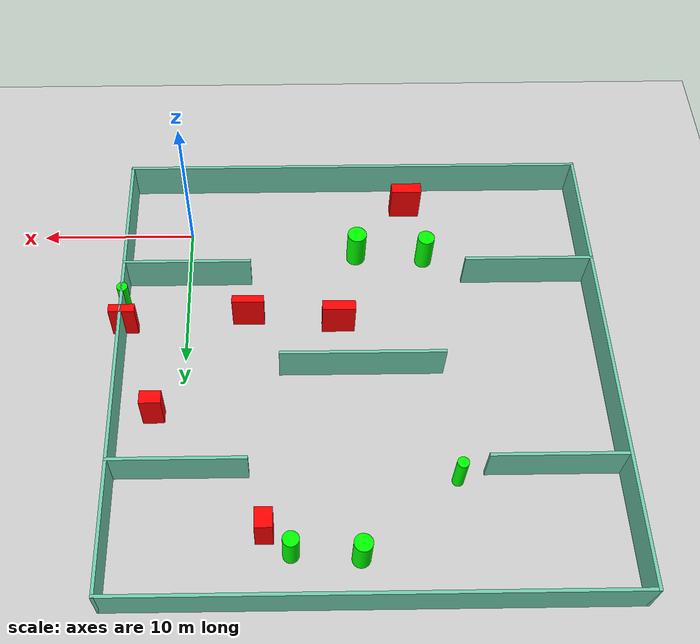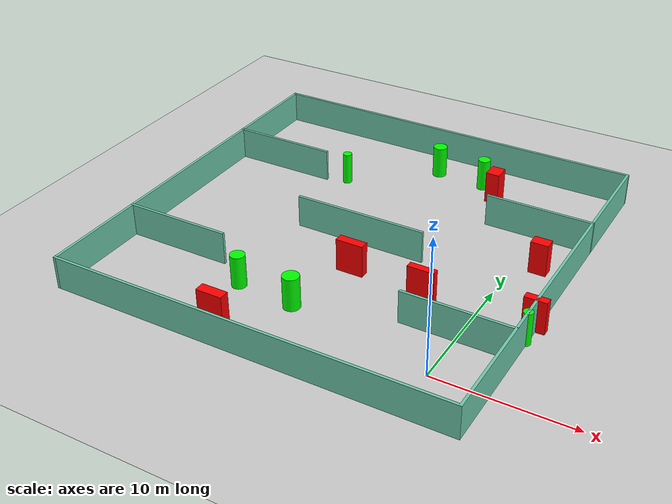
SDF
<sdf version="1.7">
 <world name="default">
  <light name="sun" type="directional">
   <pose>0 0 10 0 -0 0</pose>
   <diffuse>0.8 0.8 0.8 1</diffuse>
   <specular>0.2 0.2 0.2 1</specular>
   <attenuation>
    <range>1000</range>
    <constant>0.9</constant>
    <linear>0.01</linear>
    <quadratic>0.001</quadratic>
   </attenuation>
   <direction>-0.5 0.1 -0.9</direction>
   <spot><inner_angle>0</inner_angle><outer_angle>0</outer_angle><falloff>0</falloff></spot>
  </light>
  <model name="ground_plane">
   <static>1</static>
   <link name="link">
    <collision name="collision">
     <geometry><plane><normal>0 0 1</normal><size>100 100</size></plane></geometry>
     <surface>
      <contact><collide_bitmask>65535</collide_bitmask></contact>
      <friction><ode><mu>100</mu><mu2>50</mu2></ode></friction>
     </surface>
    </collision>
    <visual name="visual">
     <cast_shadows>0</cast_shadows>
     <geometry><plane><normal>0 0 1</normal><size>100 100</size></plane></geometry>
     <material>
      <script><uri>file://media/materials/scripts/gazebo.material</uri><name>Gazebo/Grey</name></script>
     </material>
    </visual>
   </link>
  </model>
  <gravity>0 0 -9.8</gravity>
  <magnetic_field>6e-06 2.3e-05 -4.2e-05</magnetic_field>
  <atmosphere type="adiabatic"/>
  <physics type="ode">
   <max_step_size>0.001</max_step_size>
   <real_time_factor>1</real_time_factor>
   <real_time_update_rate>1000</real_time_update_rate>
  </physics>
  <scene><ambient>0.4 0.4 0.4 1</ambient><background>0.7 0.7 0.7 1</background><shadows>1</shadows></scene>
  <spherical_coordinates>
   <surface_model>EARTH_WGS84</surface_model>
   <latitude_deg>0</latitude_deg>
   <longitude_deg>0</longitude_deg>
   <elevation>0</elevation>
   <heading_deg>0</heading_deg>
  </spherical_coordinates>
  <model name="my_base_walls">
   <link name="Wall_10">
    <collision name="Wall_10_Collision">
     <geometry><box><size>8.2 0.2 2.5</size></box></geometry>
     <pose>0 0 1.25 0 -0 0</pose>
    </collision>
    <visual name="Wall_10_Visual">
     <pose>0 0 1.25 0 -0 0</pose>
     <geometry><box><size>8.2 0.2 2.5</size></box></geometry>
     <material>
      <script><uri>file://media/materials/scripts/gazebo.material</uri><name>Gazebo/Grey</name></script>
      <ambient>0.435294 0.796078 0.67451 1</ambient>
     </material>
     <meta><layer>0</layer></meta>
    </visual>
    <pose>-11 -7 0 0 -0 0</pose>
   </link>
   <link name="Wall_12">
    <collision name="Wall_12_Collision">
     <geometry><box><size>8.2 0.2 2.5</size></box></geometry>
     <pose>0 0 1.25 0 -0 0</pose>
    </collision>
    <visual name="Wall_12_Visual">
     <pose>0 0 1.25 0 -0 0</pose>
     <geometry><box><size>8.2 0.2 2.5</size></box></geometry>
     <material>
      <script><uri>file://media/materials/scripts/gazebo.material</uri><name>Gazebo/Grey</name></script>
      <ambient>0.435294 0.796078 0.67451 1</ambient>
     </material>
     <meta><layer>0</layer></meta>
    </visual>
    <pose>-11 7 0 0 -0 0</pose>
   </link>
   <link name="Wall_14">
    <collision name="Wall_14_Collision">
     <geometry><box><size>8.2 0.2 2.5</size></box></geometry>
     <pose>0 0 1.25 0 -0 0</pose>
    </collision>
    <visual name="Wall_14_Visual">
     <pose>0 0 1.25 0 -0 0</pose>
     <geometry><box><size>8.2 0.2 2.5</size></box></geometry>
     <material>
      <script><uri>file://media/materials/scripts/gazebo.material</uri><name>Gazebo/Grey</name></script>
      <ambient>0.435294 0.796078 0.67451 1</ambient>
     </material>
     <meta><layer>0</layer></meta>
    </visual>
    <pose>11 7 0 0 -0 3.14159</pose>
   </link>
   <link name="Wall_16">
    <collision name="Wall_16_Collision">
     <geometry><box><size>10.2 0.2 2.5</size></box></geometry>
     <pose>0 0 1.25 0 -0 0</pose>
    </collision>
    <visual name="Wall_16_Visual">
     <pose>0 0 1.25 0 -0 0</pose>
     <geometry><box><size>10.2 0.2 2.5</size></box></geometry>
     <material>
      <script><uri>file://media/materials/scripts/gazebo.material</uri><name>Gazebo/Grey</name></script>
      <ambient>0.435294 0.796078 0.67451 1</ambient>
     </material>
     <meta><layer>0</layer></meta>
    </visual>
    <pose>0 0 0 0 -0 3.14159</pose>
   </link>
   <link name="Wall_2">
    <collision name="Wall_2_Collision">
     <geometry><box><size>30.2 0.2 2.5</size></box></geometry>
     <pose>0 0 1.25 0 -0 0</pose>
    </collision>
    <visual name="Wall_2_Visual">
     <pose>0 0 1.25 0 -0 0</pose>
     <geometry><box><size>30.2 0.2 2.5</size></box></geometry>
     <material>
      <script><uri>file://media/materials/scripts/gazebo.material</uri><name>Gazebo/Grey</name></script>
      <ambient>0.435294 0.796078 0.67451 1</ambient>
     </material>
     <meta><layer>0</layer></meta>
    </visual>
    <pose>0 -15 0 0 -0 3.14159</pose>
   </link>
   <link name="Wall_3">
    <collision name="Wall_3_Collision">
     <geometry><box><size>30.2 0.2 2.5</size></box></geometry>
     <pose>0 0 1.25 0 -0 0</pose>
    </collision>
    <visual name="Wall_3_Visual">
     <pose>0 0 1.25 0 -0 0</pose>
     <geometry><box><size>30.2 0.2 2.5</size></box></geometry>
     <material>
      <script><uri>file://media/materials/scripts/gazebo.material</uri><name>Gazebo/Grey</name></script>
      <ambient>0.435294 0.796078 0.67451 1</ambient>
     </material>
     <meta><layer>0</layer></meta>
    </visual>
    <pose>-15 0 0 0 -0 1.5708</pose>
   </link>
   <link name="Wall_4">
    <collision name="Wall_4_Collision">
     <geometry><box><size>30.2 0.2 2.5</size></box></geometry>
     <pose>0 0 1.25 0 -0 0</pose>
    </collision>
    <visual name="Wall_4_Visual">
     <pose>0 0 1.25 0 -0 0</pose>
     <geometry><box><size>30.2 0.2 2.5</size></box></geometry>
     <material>
      <script><uri>file://media/materials/scripts/gazebo.material</uri><name>Gazebo/Grey</name></script>
      <ambient>0.435294 0.796078 0.67451 1</ambient>
     </material>
     <meta><layer>0</layer></meta>
    </visual>
    <pose>0 15 0 0 -0 0</pose>
   </link>
   <link name="Wall_6">
    <collision name="Wall_6_Collision">
     <geometry><box><size>30.2 0.2 2.5</size></box></geometry>
     <pose>0 0 1.25 0 -0 0</pose>
    </collision>
    <visual name="Wall_6_Visual">
     <pose>0 0 1.25 0 -0 0</pose>
     <geometry><box><size>30.2 0.2 2.5</size></box></geometry>
     <material>
      <script><uri>file://media/materials/scripts/gazebo.material</uri><name>Gazebo/Grey</name></script>
      <ambient>0.435294 0.796078 0.67451 1</ambient>
     </material>
     <meta><layer>0</layer></meta>
    </visual>
    <pose>15 0 0 0 -0 1.5708</pose>
   </link>
   <link name="Wall_8">
    <collision name="Wall_8_Collision">
     <geometry><box><size>8.2 0.2 2.5</size></box></geometry>
     <pose>0 0 1.25 0 -0 0</pose>
    </collision>
    <visual name="Wall_8_Visual">
     <pose>0 0 1.25 0 -0 0</pose>
     <geometry><box><size>8.2 0.2 2.5</size></box></geometry>
     <material>
      <script><uri>file://media/materials/scripts/gazebo.material</uri><name>Gazebo/Grey</name></script>
      <ambient>0.435294 0.796078 0.67451 1</ambient>
     </material>
     <meta><layer>0</layer></meta>
    </visual>
    <pose>11 -7 0 0 -0 3.14159</pose>
   </link>
   <static>1</static>
   <pose>-11 11 0 0 -0 0</pose>
  </model>
  <model name="cylinder1">
   <static>1</static>
   <link name="link">
    <inertial>
     <mass>1</mass>
     <inertia><ixx>0.5</ixx><ixy>0</ixy><ixz>0</ixz><iyy>0.5</iyy><iyz>0</iyz><izz>1</izz></inertia>
    </inertial>
    <collision name="collision">
     <geometry><cylinder><radius>0.5473285373870107</radius><length>2.5</length></cylinder></geometry>
    </collision>
    <visual name="visual">
     <geometry><cylinder><radius>0.5473285373870107</radius><length>2.5</length></cylinder></geometry>
     <material>
      <ambient>0 1 0 1</ambient>
      <diffuse>0 1 0 1</diffuse>
      <specular>0.1 0.1 0.1 1</specular>
      <emissive>0 0 0 0</emissive>
     </material>
    </visual>
   </link>
   <pose>-15.525277224386956 2.2853949136189833 1.25 0 0 0</pose>
  </model>
  <model name="cylinder2">
   <static>1</static>
   <link name="link">
    <inertial>
     <mass>1</mass>
     <inertia><ixx>0.5</ixx><ixy>0</ixy><ixz>0</ixz><iyy>0.5</iyy><iyz>0</iyz><izz>1</izz></inertia>
    </inertial>
    <collision name="collision">
     <geometry><cylinder><radius>0.34398300373715135</radius><length>2.5</length></cylinder></geometry>
    </collision>
    <visual name="visual">
     <geometry><cylinder><radius>0.34398300373715135</radius><length>2.5</length></cylinder></geometry>
     <material>
      <ambient>0 1 0 1</ambient>
      <diffuse>0 1 0 1</diffuse>
      <specular>0.1 0.1 0.1 1</specular>
      <emissive>0 0 0 0</emissive>
     </material>
    </visual>
   </link>
   <pose>3.989161477922689 5.95665931290854 1.25 0 0 0</pose>
  </model>
  <model name="cylinder3">
   <static>1</static>
   <link name="link">
    <inertial>
     <mass>1</mass>
     <inertia><ixx>0.5</ixx><ixy>0</ixy><ixz>0</ixz><iyy>0.5</iyy><iyz>0</iyz><izz>1</izz></inertia>
    </inertial>
    <collision name="collision">
     <geometry><cylinder><radius>0.3504960527146171</radius><length>2.5</length></cylinder></geometry>
    </collision>
    <visual name="visual">
     <geometry><cylinder><radius>0.3504960527146171</radius><length>2.5</length></cylinder></geometry>
     <material>
      <ambient>0 1 0 1</ambient>
      <diffuse>0 1 0 1</diffuse>
      <specular>0.1 0.1 0.1 1</specular>
      <emissive>0 0 0 0</emissive>
     </material>
    </visual>
   </link>
   <pose>-16.329999694738536 18.476482791002862 1.25 0 0 0</pose>
  </model>
  <model name="cylinder4">
   <static>1</static>
   <link name="link">
    <inertial>
     <mass>1</mass>
     <inertia><ixx>0.5</ixx><ixy>0</ixy><ixz>0</ixz><iyy>0.5</iyy><iyz>0</iyz><izz>1</izz></inertia>
    </inertial>
    <collision name="collision">
     <geometry><cylinder><radius>0.6175536770437577</radius><length>2.5</length></cylinder></geometry>
    </collision>
    <visual name="visual">
     <geometry><cylinder><radius>0.6175536770437577</radius><length>2.5</length></cylinder></geometry>
     <material>
      <ambient>0 1 0 1</ambient>
      <diffuse>0 1 0 1</diffuse>
      <specular>0.1 0.1 0.1 1</specular>
      <emissive>0 0 0 0</emissive>
     </material>
    </visual>
   </link>
   <pose>-11.038252714739723 1.9568622221706349 1.25 0 0 0</pose>
  </model>
  <model name="cylinder5">
   <static>1</static>
   <link name="link">
    <inertial>
     <mass>1</mass>
     <inertia><ixx>0.5</ixx><ixy>0</ixy><ixz>0</ixz><iyy>0.5</iyy><iyz>0</iyz><izz>1</izz></inertia>
    </inertial>
    <collision name="collision">
     <geometry><cylinder><radius>0.5468634798109361</radius><length>2.5</length></cylinder></geometry>
    </collision>
    <visual name="visual">
     <geometry><cylinder><radius>0.5468634798109361</radius><length>2.5</length></cylinder></geometry>
     <material>
      <ambient>0 1 0 1</ambient>
      <diffuse>0 1 0 1</diffuse>
      <specular>0.1 0.1 0.1 1</specular>
      <emissive>0 0 0 0</emissive>
     </material>
    </visual>
   </link>
   <pose>-10.454429931855556 23.202105552443996 1.25 0 0 0</pose>
  </model>
  <model name="cylinder6">
   <static>1</static>
   <link name="link">
    <inertial>
     <mass>1</mass>
     <inertia><ixx>0.5</ixx><ixy>0</ixy><ixz>0</ixz><iyy>0.5</iyy><iyz>0</iyz><izz>1</izz></inertia>
    </inertial>
    <collision name="collision">
     <geometry><cylinder><radius>0.48196315879055096</radius><length>2.5</length></cylinder></geometry>
    </collision>
    <visual name="visual">
     <geometry><cylinder><radius>0.48196315879055096</radius><length>2.5</length></cylinder></geometry>
     <material>
      <ambient>0 1 0 1</ambient>
      <diffuse>0 1 0 1</diffuse>
      <specular>0.1 0.1 0.1 1</specular>
      <emissive>0 0 0 0</emissive>
     </material>
    </visual>
   </link>
   <pose>-6.5011502265136425 22.931749918585673 1.25 0 0 0</pose>
  </model>
  <model name="box1">
   <static>1</static>
   <link name="link">
    <inertial>
     <mass>1</mass>
     <inertia><ixx>0.083</ixx><ixy>0</ixy><ixz>0</ixz><iyy>0.083</iyy><iyz>0</iyz><izz>0.083</izz></inertia>
    </inertial>
    <collision name="collision">
     <geometry><box><size>1.3068346421241595 0.8554300969515113 2.5</size></box></geometry>
    </collision>
    <visual name="visual">
     <geometry><box><size>1.3068346421241595 0.8554300969515113 2.5</size></box></geometry>
     <material>
      <ambient>1 0 0 1</ambient>
      <diffuse>1 0 0 1</diffuse>
      <specular>0.1 0.1 0.1 1</specular>
      <emissive>0 0 0 0</emissive>
     </material>
    </visual>
    <sensor name="my_contact" type="contact">
     <contact><collision>box_collision</collision><topic>__default_topic__</topic></contact>
    </sensor>
   </link>
   <pose>1.7285600728053154 13.978499741226319 1.25 0 0 0</pose>
  </model>
  <model name="box2">
   <static>1</static>
   <link name="link">
    <inertial>
     <mass>1</mass>
     <inertia><ixx>0.083</ixx><ixy>0</ixy><ixz>0</ixz><iyy>0.083</iyy><iyz>0</iyz><izz>0.083</izz></inertia>
    </inertial>
    <collision name="collision">
     <geometry><box><size>2.0808967956331452 0.6738711883808335 2.5</size></box></geometry>
    </collision>
    <visual name="visual">
     <geometry><box><size>2.0808967956331452 0.6738711883808335 2.5</size></box></geometry>
     <material>
      <ambient>1 0 0 1</ambient>
      <diffuse>1 0 0 1</diffuse>
      <specular>0.1 0.1 0.1 1</specular>
      <emissive>0 0 0 0</emissive>
     </material>
    </visual>
    <sensor name="my_contact" type="contact">
     <contact><collision>box_collision</collision><topic>__default_topic__</topic></contact>
    </sensor>
   </link>
   <pose>-9.666810130768255 7.539175094701031 1.25 0 0 0</pose>
  </model>
  <model name="box3">
   <static>1</static>
   <link name="link">
    <inertial>
     <mass>1</mass>
     <inertia><ixx>0.083</ixx><ixy>0</ixy><ixz>0</ixz><iyy>0.083</iyy><iyz>0</iyz><izz>0.083</izz></inertia>
    </inertial>
    <collision name="collision">
     <geometry><box><size>1.9727525991300403 0.7579587234719387 2.5</size></box></geometry>
    </collision>
    <visual name="visual">
     <geometry><box><size>1.9727525991300403 0.7579587234719387 2.5</size></box></geometry>
     <material>
      <ambient>1 0 0 1</ambient>
      <diffuse>1 0 0 1</diffuse>
      <specular>0.1 0.1 0.1 1</specular>
      <emissive>0 0 0 0</emissive>
     </material>
    </visual>
    <sensor name="my_contact" type="contact">
     <contact><collision>box_collision</collision><topic>__default_topic__</topic></contact>
    </sensor>
   </link>
   <pose>-14.514190709815722 -1.9882085168929708 1.25 0 0 0</pose>
  </model>
  <model name="box4">
   <static>1</static>
   <link name="link">
    <inertial>
     <mass>1</mass>
     <inertia><ixx>0.083</ixx><ixy>0</ixy><ixz>0</ixz><iyy>0.083</iyy><iyz>0</iyz><izz>0.083</izz></inertia>
    </inertial>
    <collision name="collision">
     <geometry><box><size>1.0471224498430962 1.2401327868346566 2.5</size></box></geometry>
    </collision>
    <visual name="visual">
     <geometry><box><size>1.0471224498430962 1.2401327868346566 2.5</size></box></geometry>
     <material>
      <ambient>1 0 0 1</ambient>
      <diffuse>1 0 0 1</diffuse>
      <specular>0.1 0.1 0.1 1</specular>
      <emissive>0 0 0 0</emissive>
     </material>
    </visual>
    <sensor name="my_contact" type="contact">
     <contact><collision>box_collision</collision><topic>__default_topic__</topic></contact>
    </sensor>
   </link>
   <pose>-4.9972079574548385 21.644871538622617 1.25 0 0 0</pose>
  </model>
  <model name="box5">
   <static>1</static>
   <link name="link">
    <inertial>
     <mass>1</mass>
     <inertia><ixx>0.083</ixx><ixy>0</ixy><ixz>0</ixz><iyy>0.083</iyy><iyz>0</iyz><izz>0.083</izz></inertia>
    </inertial>
    <collision name="collision">
     <geometry><box><size>1.6354842186760903 0.5572815149684405 2.5</size></box></geometry>
    </collision>
    <visual name="visual">
     <geometry><box><size>1.6354842186760903 0.5572815149684405 2.5</size></box></geometry>
     <material>
      <ambient>1 0 0 1</ambient>
      <diffuse>1 0 0 1</diffuse>
      <specular>0.1 0.1 0.1 1</specular>
      <emissive>0 0 0 0</emissive>
     </material>
    </visual>
    <sensor name="my_contact" type="contact">
     <contact><collision>box_collision</collision><topic>__default_topic__</topic></contact>
    </sensor>
   </link>
   <pose>3.918418210534174 7.5856635776136 1.25 0 0 0</pose>
  </model>
  <model name="box6">
   <static>1</static>
   <link name="link">
    <inertial>
     <mass>1</mass>
     <inertia><ixx>0.083</ixx><ixy>0</ixy><ixz>0</ixz><iyy>0.083</iyy><iyz>0</iyz><izz>0.083</izz></inertia>
    </inertial>
    <collision name="collision">
     <geometry><box><size>2.0120982613705216 0.530783296858071 2.5</size></box></geometry>
    </collision>
    <visual name="visual">
     <geometry><box><size>2.0120982613705216 0.530783296858071 2.5</size></box></geometry>
     <material>
      <ambient>1 0 0 1</ambient>
      <diffuse>1 0 0 1</diffuse>
      <specular>0.1 0.1 0.1 1</specular>
      <emissive>0 0 0 0</emissive>
     </material>
    </visual>
    <sensor name="my_contact" type="contact">
     <contact><collision>box_collision</collision><topic>__default_topic__</topic></contact>
    </sensor>
   </link>
   <pose>-3.950594895683679 6.998770223087655 1.25 0 0 0</pose>
  </model>
 </world>
</sdf>
